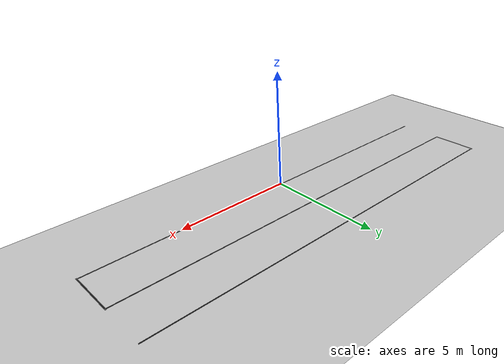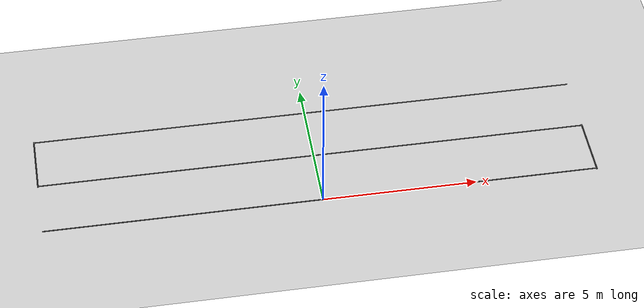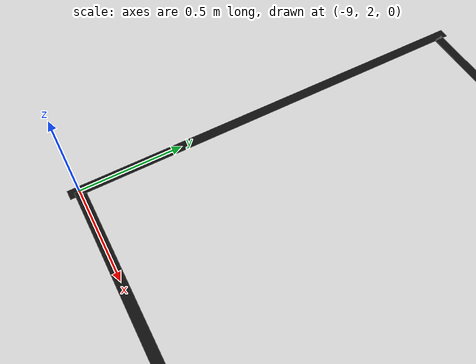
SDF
<?xml version="1.0"?>
<sdf version="1.6">
  <world name="corridor_maze">

    <include>
      <uri>model://ground_plane</uri>
    </include>

    <include>
      <uri>model://sun</uri>
    </include>

    <!-- Row 1: east along y=0 from x=-9 to x=9 -->
    <model name="line_row1">
      <static>true</static>
      <pose>0 0 0.001 0 0 0</pose>
      <link name="link">
        <visual name="visual">
          <geometry><box><size>18.0 0.05 0.001</size></box></geometry>
          <material>
            <ambient>0.05 0.05 0.05 1</ambient>
            <diffuse>0.05 0.05 0.05 1</diffuse>
          </material>
        </visual>
      </link>
    </model>

    <!-- Right turn: x=9, from y=0 to y=2 -->
    <model name="line_turn_right">
      <static>true</static>
      <pose>9 1.0 0.001 0 0 1.5708</pose>
      <link name="link">
        <visual name="visual">
          <geometry><box><size>2.1 0.05 0.001</size></box></geometry>
          <material>
            <ambient>0.05 0.05 0.05 1</ambient>
            <diffuse>0.05 0.05 0.05 1</diffuse>
          </material>
        </visual>
      </link>
    </model>

    <!-- Row 2: west along y=2 from x=9 to x=-9 -->
    <model name="line_row2">
      <static>true</static>
      <pose>0 2 0.001 0 0 0</pose>
      <link name="link">
        <visual name="visual">
          <geometry><box><size>18.0 0.05 0.001</size></box></geometry>
          <material>
            <ambient>0.05 0.05 0.05 1</ambient>
            <diffuse>0.05 0.05 0.05 1</diffuse>
          </material>
        </visual>
      </link>
    </model>

    <!-- Left turn: x=-9, from y=2 to y=4 -->
    <model name="line_turn_left">
      <static>true</static>
      <pose>-9 3.0 0.001 0 0 1.5708</pose>
      <link name="link">
        <visual name="visual">
          <geometry><box><size>2.1 0.05 0.001</size></box></geometry>
          <material>
            <ambient>0.05 0.05 0.05 1</ambient>
            <diffuse>0.05 0.05 0.05 1</diffuse>
          </material>
        </visual>
      </link>
    </model>

    <!-- Row 3: east along y=4 from x=-9 to x=9 -->
    <model name="line_row3">
      <static>true</static>
      <pose>0 4 0.001 0 0 0</pose>
      <link name="link">
        <visual name="visual">
          <geometry><box><size>18.0 0.05 0.001</size></box></geometry>
          <material>
            <ambient>0.05 0.05 0.05 1</ambient>
            <diffuse>0.05 0.05 0.05 1</diffuse>
          </material>
        </visual>
      </link>
    </model>

  </world>
</sdf>
